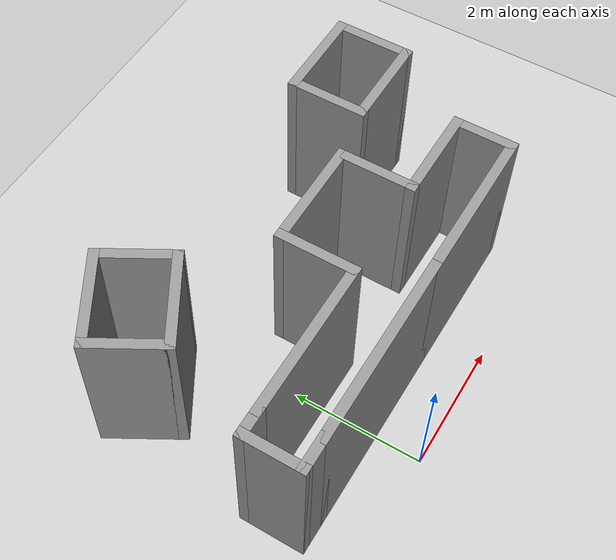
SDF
<sdf version="1.6">
 <world name="default">
  <scene><ambient>0.4 0.4 0.4 1</ambient><background>0.7 0.7 0.7 1</background><shadows>1</shadows></scene>
  <light name="sun" type="directional">
   <pose>0 0 10 0 -0 0</pose>
   <diffuse>0.8 0.8 0.8 1</diffuse>
   <specular>0.2 0.2 0.2 1</specular>
   <attenuation>
    <range>1000</range>
    <constant>0.9</constant>
    <linear>0.01</linear>
    <quadratic>0.001</quadratic>
   </attenuation>
   <direction>-0.5 0.1 -0.9</direction>
  </light>
  <model name="ground_plane">
   <static>1</static>
   <link name="link">
    <collision name="collision">
     <geometry><plane><normal>0 0 1</normal><size>100 100</size></plane></geometry>
     <surface>
      <contact><collide_bitmask>65535</collide_bitmask></contact>
      <friction><ode><mu>100</mu><mu2>50</mu2></ode></friction>
     </surface>
    </collision>
    <visual name="visual">
     <cast_shadows>0</cast_shadows>
     <geometry><plane><normal>0 0 1</normal><size>100 100</size></plane></geometry>
     <material>
      <script><uri>file://media/materials/scripts/gazebo.material</uri><name>Gazebo/Grey</name></script>
     </material>
    </visual>
   </link>
  </model>
  <physics name="default_physics" default="0" type="ode">
   <real_time_update_rate>1000</real_time_update_rate>
   <max_step_size>0.001</max_step_size>
   <real_time_factor>1</real_time_factor>
   <ode>
    <solver>
     <type>quick</type>
     <iters>150</iters>
     <precon_iters>0</precon_iters>
     <sor>1.4</sor>
     <use_dynamic_moi_rescaling>1</use_dynamic_moi_rescaling>
    </solver>
    <constraints>
     <cfm>1e-05</cfm>
     <erp>0.2</erp>
     <contact_max_correcting_vel>2000</contact_max_correcting_vel>
     <contact_surface_layer>0.01</contact_surface_layer>
    </constraints>
   </ode>
  </physics>
  <gravity>0 0 -9.8</gravity>
  <magnetic_field>6e-06 2.3e-05 -4.2e-05</magnetic_field>
  <atmosphere type="adiabatic"/>
  <spherical_coordinates>
   <surface_model>EARTH_WGS84</surface_model>
   <latitude_deg>0</latitude_deg>
   <longitude_deg>0</longitude_deg>
   <elevation>0</elevation>
   <heading_deg>0</heading_deg>
  </spherical_coordinates>
  <model name="open_track">
   <pose>1.321 2.72883 0 0 -0 0</pose>
   <link name="Wall_11">
    <collision name="Wall_11_Collision">
     <geometry><box><size>1 0.15 2.5</size></box></geometry>
     <pose>0 0 1.25 0 -0 0</pose>
    </collision>
    <visual name="Wall_11_Visual">
     <pose>0 0 1.25 0 -0 0</pose>
     <geometry><box><size>1 0.15 2.5</size></box></geometry>
     <material>
      <script><uri>file://media/materials/scripts/gazebo.material</uri><name>Gazebo/Grey</name></script>
      <ambient>1 1 1 1</ambient>
     </material>
     <meta><layer>0</layer></meta>
    </visual>
    <pose>2.42231 -1.52419 0 0 -0 1.5708</pose>
   </link>
   <link name="Wall_12">
    <collision name="Wall_12_Collision">
     <geometry><box><size>1.5 0.15 2.5</size></box></geometry>
     <pose>0 0 1.25 0 -0 0</pose>
    </collision>
    <visual name="Wall_12_Visual">
     <pose>0 0 1.25 0 -0 0</pose>
     <geometry><box><size>1.5 0.15 2.5</size></box></geometry>
     <material>
      <script><uri>file://media/materials/scripts/gazebo.material</uri><name>Gazebo/Grey</name></script>
      <ambient>1 1 1 1</ambient>
     </material>
     <meta><layer>0</layer></meta>
    </visual>
    <pose>1.74731 -1.09919 0 0 -0 3.14159</pose>
   </link>
   <link name="Wall_13">
    <collision name="Wall_13_Collision">
     <geometry><box><size>1.25 0.15 2.5</size></box></geometry>
     <pose>0 0 1.25 0 -0 0</pose>
    </collision>
    <visual name="Wall_13_Visual">
     <pose>0 0 1.25 0 -0 0</pose>
     <geometry><box><size>1.25 0.15 2.5</size></box></geometry>
     <material>
      <script><uri>file://media/materials/scripts/gazebo.material</uri><name>Gazebo/Grey</name></script>
      <ambient>1 1 1 1</ambient>
     </material>
     <meta><layer>0</layer></meta>
    </visual>
    <pose>1.07231 -0.54919 0 0 -0 1.5708</pose>
   </link>
   <link name="Wall_14">
    <collision name="Wall_14_Collision">
     <geometry><box><size>1.75 0.15 2.5</size></box></geometry>
     <pose>0 0 1.25 0 -0 0</pose>
    </collision>
    <visual name="Wall_14_Visual">
     <pose>0 0 1.25 0 -0 0</pose>
     <geometry><box><size>1.75 0.15 2.5</size></box></geometry>
     <material>
      <script><uri>file://media/materials/scripts/gazebo.material</uri><name>Gazebo/Grey</name></script>
      <ambient>1 1 1 1</ambient>
     </material>
     <meta><layer>0</layer></meta>
    </visual>
    <pose>0.272311 0.000809 0 0 -0 3.14159</pose>
   </link>
   <link name="Wall_15">
    <collision name="Wall_15_Collision">
     <geometry><box><size>1.25 0.15 2.5</size></box></geometry>
     <pose>0 0 1.25 0 -0 0</pose>
    </collision>
    <visual name="Wall_15_Visual">
     <pose>0 0 1.25 0 -0 0</pose>
     <geometry><box><size>1.25 0.15 2.5</size></box></geometry>
     <material>
      <script><uri>file://media/materials/scripts/gazebo.material</uri><name>Gazebo/Grey</name></script>
      <ambient>1 1 1 1</ambient>
     </material>
     <meta><layer>0</layer></meta>
    </visual>
    <pose>-0.527689 -0.54919 0 0 -0 -1.5708</pose>
   </link>
   <link name="Wall_16">
    <collision name="Wall_16_Collision">
     <geometry><box><size>2.5 0.15 2.5</size></box></geometry>
     <pose>0 0 1.25 0 -0 0</pose>
    </collision>
    <visual name="Wall_16_Visual">
     <pose>0 0 1.25 0 -0 0</pose>
     <geometry><box><size>2.5 0.15 2.5</size></box></geometry>
     <material>
      <script><uri>file://media/materials/scripts/gazebo.material</uri><name>Gazebo/Grey</name></script>
      <ambient>1 1 1 1</ambient>
     </material>
     <meta><layer>0</layer></meta>
    </visual>
    <pose>-1.70269 -1.09919 0 0 -0 3.14159</pose>
   </link>
   <link name="Wall_17">
    <collision name="Wall_17_Collision">
     <geometry><box><size>0.5 0.15 2.5</size></box></geometry>
     <pose>0 0 1.25 0 -0 0</pose>
    </collision>
    <visual name="Wall_17_Visual">
     <pose>0 0 1.25 0 -0 0</pose>
     <geometry><box><size>0.5 0.15 2.5</size></box></geometry>
     <material>
      <script><uri>file://media/materials/scripts/gazebo.material</uri><name>Gazebo/Grey</name></script>
      <ambient>1 1 1 1</ambient>
     </material>
     <meta><layer>0</layer></meta>
    </visual>
    <pose>-3.05269 -1.09919 0 0 -0 3.14159</pose>
   </link>
   <link name="Wall_18">
    <collision name="Wall_18_Collision">
     <geometry><box><size>1 0.15 2.5</size></box></geometry>
     <pose>0 0 1.25 0 -0 0</pose>
    </collision>
    <visual name="Wall_18_Visual">
     <pose>0 0 1.25 0 -0 0</pose>
     <geometry><box><size>1 0.15 2.5</size></box></geometry>
     <material>
      <script><uri>file://media/materials/scripts/gazebo.material</uri><name>Gazebo/Grey</name></script>
      <ambient>1 1 1 1</ambient>
     </material>
     <meta><layer>0</layer></meta>
    </visual>
    <pose>-3.22769 -1.52419 0 0 -0 -1.5708</pose>
   </link>
   <link name="Wall_19">
    <collision name="Wall_19_Collision">
     <geometry><box><size>0.6 0.15 2.5</size></box></geometry>
     <pose>0 0 1.25 0 -0 0</pose>
    </collision>
    <visual name="Wall_19_Visual">
     <pose>0 0 1.25 0 -0 0</pose>
     <geometry><box><size>0.6 0.15 2.5</size></box></geometry>
     <material>
      <script><uri>file://media/materials/scripts/gazebo.material</uri><name>Gazebo/Grey</name></script>
      <ambient>1 1 1 1</ambient>
     </material>
     <meta><layer>0</layer></meta>
    </visual>
    <pose>-3.00269 -1.94919 0 0 -0 0</pose>
   </link>
   <link name="Wall_21">
    <collision name="Wall_21_Collision">
     <geometry><box><size>1.5 0.15 2.5</size></box></geometry>
     <pose>0 0 1.25 0 -0 0</pose>
    </collision>
    <visual name="Wall_21_Visual">
     <pose>0 0 1.25 0 -0 0</pose>
     <geometry><box><size>1.5 0.15 2.5</size></box></geometry>
     <material>
      <script><uri>file://media/materials/scripts/gazebo.material</uri><name>Gazebo/Grey</name></script>
      <ambient>1 1 1 1</ambient>
     </material>
     <meta><layer>0</layer></meta>
    </visual>
    <pose>-2.08205 0.631611 0 0 -0 -2.61799</pose>
   </link>
   <link name="Wall_22">
    <collision name="Wall_22_Collision">
     <geometry><box><size>1.25 0.15 2.5</size></box></geometry>
     <pose>0 0 1.25 0 -0 0</pose>
    </collision>
    <visual name="Wall_22_Visual">
     <pose>0 0 1.25 0 -0 0</pose>
     <geometry><box><size>1.25 0.15 2.5</size></box></geometry>
     <material>
      <script><uri>file://media/materials/scripts/gazebo.material</uri><name>Gazebo/Grey</name></script>
      <ambient>1 1 1 1</ambient>
     </material>
     <meta><layer>0</layer></meta>
    </visual>
    <pose>-2.94162 0.770425 0 0 -0 2.0944</pose>
   </link>
   <link name="Wall_23">
    <collision name="Wall_23_Collision">
     <geometry><box><size>1.5 0.15 2.5</size></box></geometry>
     <pose>0 0 1.25 0 -0 0</pose>
    </collision>
    <visual name="Wall_23_Visual">
     <pose>0 0 1.25 0 -0 0</pose>
     <geometry><box><size>1.5 0.15 2.5</size></box></geometry>
     <material>
      <script><uri>file://media/materials/scripts/gazebo.material</uri><name>Gazebo/Grey</name></script>
      <ambient>1 1 1 1</ambient>
     </material>
     <meta><layer>0</layer></meta>
    </visual>
    <pose>-2.63205 1.58424 0 0 -0 0.523599</pose>
   </link>
   <link name="Wall_24">
    <collision name="Wall_24_Collision">
     <geometry><box><size>1.25 0.15 2.5</size></box></geometry>
     <pose>0 0 1.25 0 -0 0</pose>
    </collision>
    <visual name="Wall_24_Visual">
     <pose>0 0 1.25 0 -0 0</pose>
     <geometry><box><size>1.25 0.15 2.5</size></box></geometry>
     <material>
      <script><uri>file://media/materials/scripts/gazebo.material</uri><name>Gazebo/Grey</name></script>
      <ambient>1 1 1 1</ambient>
     </material>
     <meta><layer>0</layer></meta>
    </visual>
    <pose>-1.77248 1.44542 0 0 -0 -1.0472</pose>
   </link>
   <link name="Wall_26">
    <collision name="Wall_26_Collision">
     <geometry><box><size>1.25 0.15 2.5</size></box></geometry>
     <pose>0 0 1.25 0 -0 0</pose>
    </collision>
    <visual name="Wall_26_Visual">
     <pose>0 0 1.25 0 -0 0</pose>
     <geometry><box><size>1.25 0.15 2.5</size></box></geometry>
     <material>
      <script><uri>file://media/materials/scripts/gazebo.material</uri><name>Gazebo/Grey</name></script>
      <ambient>1 1 1 1</ambient>
     </material>
     <meta><layer>0</layer></meta>
    </visual>
    <pose>1.89407 0.692868 0 0 -0 -1.5708</pose>
   </link>
   <link name="Wall_27">
    <collision name="Wall_27_Collision">
     <geometry><box><size>1.5 0.15 2.5</size></box></geometry>
     <pose>0 0 1.25 0 -0 0</pose>
    </collision>
    <visual name="Wall_27_Visual">
     <pose>0 0 1.25 0 -0 0</pose>
     <geometry><box><size>1.5 0.15 2.5</size></box></geometry>
     <material>
      <script><uri>file://media/materials/scripts/gazebo.material</uri><name>Gazebo/Grey</name></script>
      <ambient>1 1 1 1</ambient>
     </material>
     <meta><layer>0</layer></meta>
    </visual>
    <pose>2.56907 0.142868 0 0 -0 0</pose>
   </link>
   <link name="Wall_28">
    <collision name="Wall_28_Collision">
     <geometry><box><size>1.25 0.15 2.5</size></box></geometry>
     <pose>0 0 1.25 0 -0 0</pose>
    </collision>
    <visual name="Wall_28_Visual">
     <pose>0 0 1.25 0 -0 0</pose>
     <geometry><box><size>1.25 0.15 2.5</size></box></geometry>
     <material>
      <script><uri>file://media/materials/scripts/gazebo.material</uri><name>Gazebo/Grey</name></script>
      <ambient>1 1 1 1</ambient>
     </material>
     <meta><layer>0</layer></meta>
    </visual>
    <pose>3.24407 0.692868 0 0 -0 1.5708</pose>
   </link>
   <link name="Wall_29">
    <collision name="Wall_29_Collision">
     <geometry><box><size>1.5 0.15 2.5</size></box></geometry>
     <pose>0 0 1.25 0 -0 0</pose>
    </collision>
    <visual name="Wall_29_Visual">
     <pose>0 0 1.25 0 -0 0</pose>
     <geometry><box><size>1.5 0.15 2.5</size></box></geometry>
     <material>
      <script><uri>file://media/materials/scripts/gazebo.material</uri><name>Gazebo/Grey</name></script>
      <ambient>1 1 1 1</ambient>
     </material>
     <meta><layer>0</layer></meta>
    </visual>
    <pose>2.56907 1.24287 0 0 -0 3.14159</pose>
   </link>
   <link name="Wall_7">
    <collision name="Wall_7_Collision">
     <geometry><box><size>3 0.15 2.5</size></box></geometry>
     <pose>0 0 1.25 0 -0 0</pose>
    </collision>
    <visual name="Wall_7_Visual">
     <pose>0 0 1.25 0 -0 0</pose>
     <geometry><box><size>3 0.15 2.5</size></box></geometry>
     <material>
      <script><uri>file://media/materials/scripts/gazebo.material</uri><name>Gazebo/Grey</name></script>
      <ambient>1 1 1 1</ambient>
     </material>
     <meta><layer>0</layer></meta>
    </visual>
    <pose>-1.35269 -1.94919 0 0 -0 0</pose>
   </link>
   <link name="Wall_9">
    <collision name="Wall_9_Collision">
     <geometry><box><size>2.5 0.15 2.5</size></box></geometry>
     <pose>0 0 1.25 0 -0 0</pose>
    </collision>
    <visual name="Wall_9_Visual">
     <pose>0 0 1.25 0 -0 0</pose>
     <geometry><box><size>2.5 0.15 2.5</size></box></geometry>
     <material>
      <script><uri>file://media/materials/scripts/gazebo.material</uri><name>Gazebo/Grey</name></script>
      <ambient>1 1 1 1</ambient>
     </material>
     <meta><layer>0</layer></meta>
    </visual>
    <pose>1.24731 -1.94919 0 0 -0 0</pose>
   </link>
   <static>1</static>
  </model>
 </world>
</sdf>
